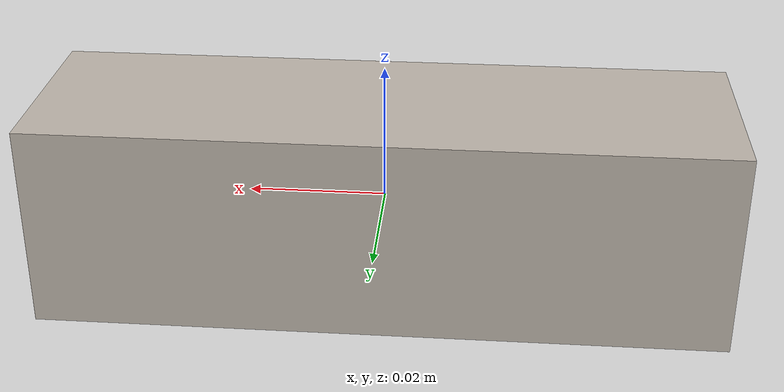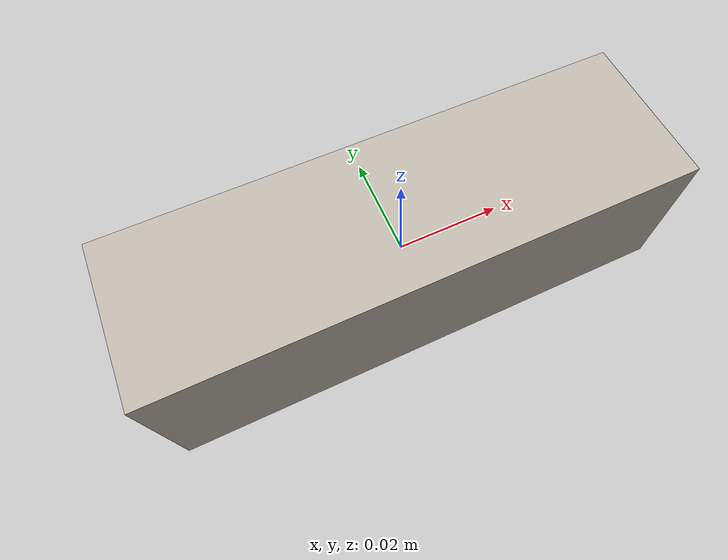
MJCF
<mujoco model="jenga_tower">
  <asset>
    <texture file="jenga_texture.png" name="tex-jenga" type="2d" />
    <material name="jenga_vis" reflectance="0.5" texrepeat="1 1" texture="tex-jenga" texuniform="false" />
  </asset>
  <worldbody>
    <body>
      <body name="object">
        <geom solimp="0.998 0.998 0.001" solref="0.01 1" density="1"  friction='0.3 .1 .1' type='box' size='.05 .015 .015' group='0' rgba="0 0 0 0" />
        <geom solimp="0.998 0.998 0.001" solref="0.01 1" density="1"  friction='0.3 .1 .1' type='box' size='.05 .015 .015' group='1' contype='0' conaffinity='0' material="jenga_vis" />
      </body>
      <site rgba="0 0 0 0" size="0.005" pos="0 0 -0.02" name="bottom_site" />
      <site rgba="0 0 0 0" size="0.005" pos="0 0 0.02" name="top_site" />
      <site rgba="0 0 0 0" size="0.005" pos="0.005 0.005 0" name="horizontal_radius_site" />
    </body>
  </worldbody>
</mujoco>
